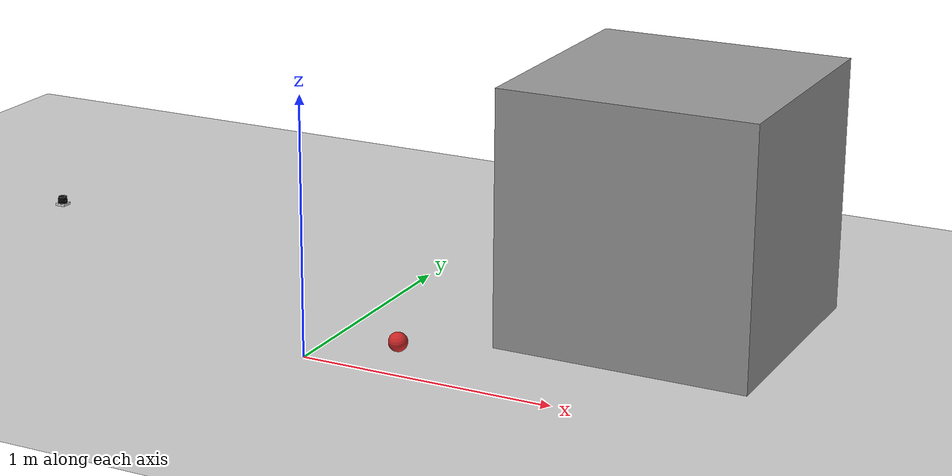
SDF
<sdf version="1.6">
 <world name="default">
  <light name="sun" type="directional">
   <pose>0 0 10 0 -0 0</pose>
   <diffuse>0.8 0.8 0.8 1</diffuse>
   <specular>0.1 0.1 0.1 1</specular>
   <attenuation>
    <range>1000</range>
    <constant>0.9</constant>
    <linear>0.01</linear>
    <quadratic>0.001</quadratic>
   </attenuation>
   <direction>-0.5 0.5 -1</direction>
  </light>
  <model name="ground_plane">
   <static>1</static>
   <link name="link">
    <collision name="collision">
     <geometry><plane><normal>0 0 1</normal><size>100 100</size></plane></geometry>
     <surface><friction><ode><mu>100</mu><mu2>50</mu2></ode></friction></surface>
    </collision>
    <visual name="visual">
     <cast_shadows>0</cast_shadows>
     <geometry><plane><normal>0 0 1</normal><size>100 100</size></plane></geometry>
     <material>
      <script><uri>file://media/materials/scripts/gazebo.material</uri><name>Gazebo/Grey</name></script>
     </material>
    </visual>
   </link>
  </model>
  <gravity>0 0 -9.8</gravity>
  <magnetic_field>6e-06 2.3e-05 -4.2e-05</magnetic_field>
  <atmosphere type="adiabatic"/>
  <physics name="default_physics" default="0" type="ode">
   <max_step_size>0.001</max_step_size>
   <real_time_factor>1</real_time_factor>
   <real_time_update_rate>1000</real_time_update_rate>
  </physics>
  <scene><ambient>0.4 0.4 0.4 1</ambient><background>0.7 0.7 0.7 1</background><shadows>1</shadows></scene>
  <spherical_coordinates>
   <surface_model>EARTH_WGS84</surface_model>
   <latitude_deg>0</latitude_deg>
   <longitude_deg>0</longitude_deg>
   <elevation>0</elevation>
   <heading_deg>0</heading_deg>
  </spherical_coordinates>
  <include><uri>model://proximity_sensor</uri><pose>-1.85508 1.0672 0 0 -0 0</pose></include>
  <model name="unit_box">
   <pose>1.07628 0.903089 0.499995 0 1e-05 0</pose>
   <link name="link">
    <inertial>
     <mass>1</mass>
     <inertia>
      <ixx>0.166667</ixx>
      <ixy>0</ixy>
      <ixz>0</ixz>
      <iyy>0.166667</iyy>
      <iyz>0</iyz>
      <izz>0.166667</izz>
     </inertia>
    </inertial>
    <collision name="collision"><geometry><box><size>1 1 1</size></box></geometry></collision>
    <visual name="visual">
     <geometry><box><size>1 1 1</size></box></geometry>
     <material>
      <script><name>Gazebo/Grey</name><uri>file://media/materials/scripts/gazebo.material</uri></script>
     </material>
    </visual>
   </link>
  </model>
  <model name="cricket_ball">
   <link name="link">
    <pose>0 0 0.0375 0 -0 0</pose>
    <inertial>
     <mass>0.1467</mass>
     <inertia>
      <ixx>8.25187e-05</ixx>
      <ixy>0</ixy>
      <ixz>0</ixz>
      <iyy>8.25187e-05</iyy>
      <iyz>0</iyz>
      <izz>8.25187e-05</izz>
     </inertia>
    </inertial>
    <collision name="collision">
     <geometry><sphere><radius>0.0375</radius></sphere></geometry>
     <surface>
      <contact>
       <poissons_ratio>0.347</poissons_ratio>
       <elastic_modulus>8.8e+09</elastic_modulus>
       <ode><kp>100000</kp><kd>100</kd><max_vel>100</max_vel><min_depth>0.001</min_depth></ode>
      </contact>
      <friction>
       <torsional>
        <coefficient>1</coefficient>
        <use_patch_radius>0</use_patch_radius>
        <surface_radius>0.01</surface_radius>
       </torsional>
      </friction>
     </surface>
    </collision>
    <visual name="visual">
     <geometry><sphere><radius>0.0375</radius></sphere></geometry>
     <material>
      <script><uri>file://media/materials/scripts/gazebo.material</uri><name>Gazebo/Red</name></script>
     </material>
    </visual>
    <velocity_decay><linear>0</linear><angular>0.005</angular></velocity_decay>
   </link>
   <pose>0.280584 0.198849 0.071676 -2.7888 0 0</pose>
  </model>
 </world>
</sdf>

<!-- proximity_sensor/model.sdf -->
<sdf version="1.6">
  <model name="proximity_sick_mm12">
    <link name="link">
      <sensor name="laser" type="ray">
        <plugin name="proximity_ray_plugin" filename="libProximityRayPlugin.so" >
          <output_state_topic>sensor_output</output_state_topic>
          <time_delay>0.02</time_delay><!-- this modifies the update rate of the ray sensor -->
          <output_function>normally_open</output_function> <!-- energized when target detected -->
          <!-- the ray sensor doesn't have setters for these yet unfortunately so they have to be set in the ray tags -->
        </plugin>
        <ray>
          <range>
            <min>0.06</min>
            <max>0.12</max>
            <resolution>0.001</resolution>
          </range>

          <!-- nothing below this line really needs to be modified upon change of sensor model -->

          <scan>
            <horizontal>
              <samples>30</samples>
              <resolution>1</resolution>
              <min_angle>-0.7854</min_angle>
              <max_angle>0.7854</max_angle>
            </horizontal>
            <vertical>
              <samples>30</samples>
              <resolution>1</resolution>
              <min_angle>-0.7854</min_angle>
              <max_angle>0.7854</max_angle>
            </vertical>
          </scan>
          <noise>
            <type>gaussian</type>
            <mean>0.0</mean>
            <stddev>0.01</stddev>
          </noise>
        </ray>

        <always_on>1</always_on>
        <visualize>true</visualize>
      </sensor>
      <gravity>false</gravity>
      <inertial>
        <mass>0.1</mass>
      </inertial>
      <visual name="visual">
        <geometry>
          <mesh>
            <uri>model://hokuyo/meshes/hokuyo.dae</uri>
          </mesh>
        </geometry>
      </visual>
    </link>
  </model>
</sdf>
